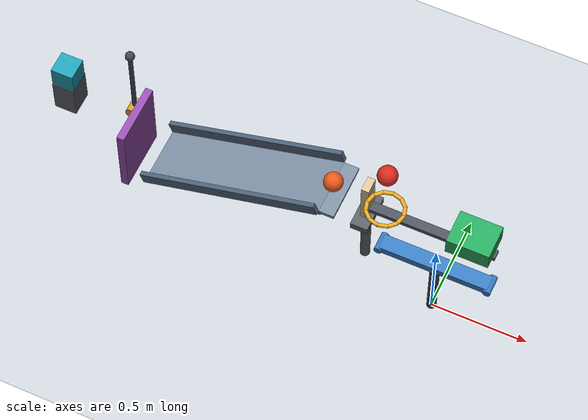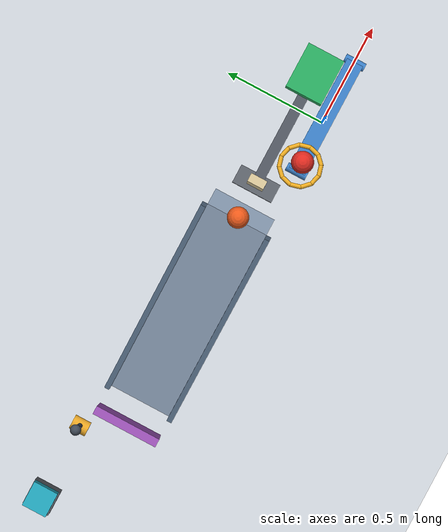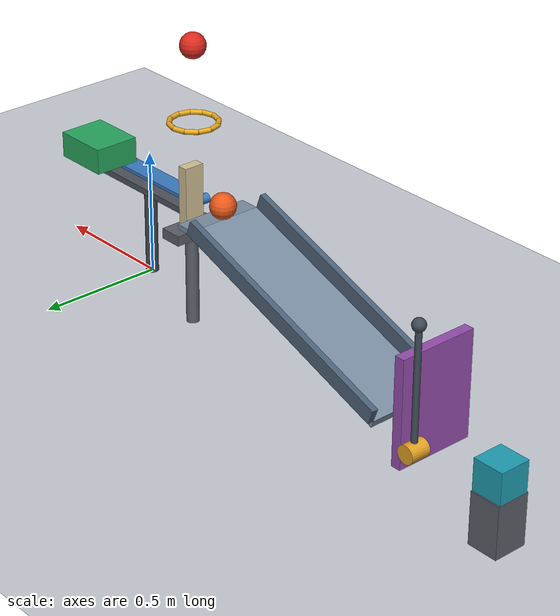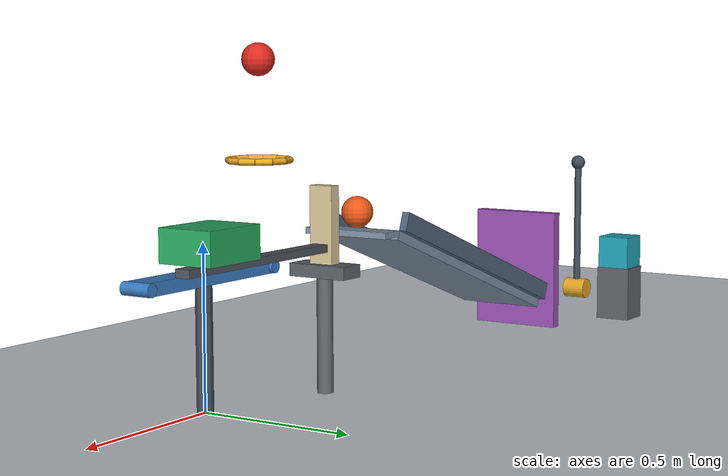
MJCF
<mujoco model="passive_chain_reaction_revised">
  <compiler angle="degree" autolimits="true"/>
  <option timestep="0.002" gravity="0 0 -9.81" integrator="implicitfast" solver="Newton" iterations="100" tolerance="1e-10"/>
  <statistic center="-0.85 0.15 0.50" extent="2.4"/>

  <visual>
    <headlight ambient="0.35 0.35 0.35" diffuse="0.65 0.65 0.65" specular="0.15 0.15 0.15"/>
    <rgba haze="0.85 0.90 0.95 1"/>
  </visual>

  <worldbody>
    <light name="scene_light" pos="-0.5 -2 4" dir="0 0.4 -1" diffuse="0.8 0.8 0.8"/>
    <geom name="floor" type="plane" pos="0 0 0" size="4 3 0.1" friction="0.72 0.005 0.005" condim="6" priority="1" solref="0.006 0.7156" solimp="0.95 0.95 0.001" rgba="0.78 0.80 0.83 1"/>

    <!-- Capsule centerlines give a 0.16 m clear inscribed diameter. -->
    <body name="ring1" pos="-0.27 0 0.72">
      <geom name="ring1_segment01" type="capsule" fromto="0.093175 0 0 0.080691 0.046588 0" size="0.01" friction="0.72 0.005 0.005" condim="3" solref="0.006 0.7156" solimp="0.95 0.95 0.001" rgba="0.9 0.65 0.12 1"/>
      <geom name="ring1_segment02" type="capsule" fromto="0.080691 0.046588 0 0.046588 0.080691 0" size="0.01" friction="0.72 0.005 0.005" condim="3" solref="0.006 0.7156" solimp="0.95 0.95 0.001" rgba="0.9 0.65 0.12 1"/>
      <geom name="ring1_segment03" type="capsule" fromto="0.046588 0.080691 0 0 0.093175 0" size="0.01" friction="0.72 0.005 0.005" condim="3" solref="0.006 0.7156" solimp="0.95 0.95 0.001" rgba="0.9 0.65 0.12 1"/>
      <geom name="ring1_segment04" type="capsule" fromto="0 0.093175 0 -0.046588 0.080691 0" size="0.01" friction="0.72 0.005 0.005" condim="3" solref="0.006 0.7156" solimp="0.95 0.95 0.001" rgba="0.9 0.65 0.12 1"/>
      <geom name="ring1_segment05" type="capsule" fromto="-0.046588 0.080691 0 -0.080691 0.046588 0" size="0.01" friction="0.72 0.005 0.005" condim="3" solref="0.006 0.7156" solimp="0.95 0.95 0.001" rgba="0.9 0.65 0.12 1"/>
      <geom name="ring1_segment06" type="capsule" fromto="-0.080691 0.046588 0 -0.093175 0 0" size="0.01" friction="0.72 0.005 0.005" condim="3" solref="0.006 0.7156" solimp="0.95 0.95 0.001" rgba="0.9 0.65 0.12 1"/>
      <geom name="ring1_segment07" type="capsule" fromto="-0.093175 0 0 -0.080691 -0.046588 0" size="0.01" friction="0.72 0.005 0.005" condim="3" solref="0.006 0.7156" solimp="0.95 0.95 0.001" rgba="0.9 0.65 0.12 1"/>
      <geom name="ring1_segment08" type="capsule" fromto="-0.080691 -0.046588 0 -0.046588 -0.080691 0" size="0.01" friction="0.72 0.005 0.005" condim="3" solref="0.006 0.7156" solimp="0.95 0.95 0.001" rgba="0.9 0.65 0.12 1"/>
      <geom name="ring1_segment09" type="capsule" fromto="-0.046588 -0.080691 0 0 -0.093175 0" size="0.01" friction="0.72 0.005 0.005" condim="3" solref="0.006 0.7156" solimp="0.95 0.95 0.001" rgba="0.9 0.65 0.12 1"/>
      <geom name="ring1_segment10" type="capsule" fromto="0 -0.093175 0 0.046588 -0.080691 0" size="0.01" friction="0.72 0.005 0.005" condim="3" solref="0.006 0.7156" solimp="0.95 0.95 0.001" rgba="0.9 0.65 0.12 1"/>
      <geom name="ring1_segment11" type="capsule" fromto="0.046588 -0.080691 0 0.080691 -0.046588 0" size="0.01" friction="0.72 0.005 0.005" condim="3" solref="0.006 0.7156" solimp="0.95 0.95 0.001" rgba="0.9 0.65 0.12 1"/>
      <geom name="ring1_segment12" type="capsule" fromto="0.080691 -0.046588 0 0.093175 0 0" size="0.01" friction="0.72 0.005 0.005" condim="3" solref="0.006 0.7156" solimp="0.95 0.95 0.001" rgba="0.9 0.65 0.12 1"/>
    </body>

    <!-- Initial ball center is 0.30 m above the ring plane.
         Initial lever-contact center height is 0.25 m below that plane. -->
    <body name="ball1" pos="-0.27 0 1.02">
      <freejoint name="ball1_free"/>
      <geom name="ball1_sphere" type="sphere" size="0.05" mass="0.20" friction="0.72 0.005 0.005" condim="3" solref="0.006 0.7156" solimp="0.95 0.95 0.001" rgba="0.85 0.16 0.12 1"/>
    </body>

    <body name="lever1_mount" pos="0 0 0.19">
      <geom name="lever1_mount_post" type="cylinder" size="0.025 0.19" contype="0" conaffinity="0" friction="0.72 0.005 0.005" rgba="0.25 0.28 0.32 1"/>
    </body>

    <!-- Overall lever envelope is 0.60 x 0.10 x 0.04 m; total mass is 0.50 kg. -->
    <body name="lever1" pos="0 0 0.40">
      <joint name="lever1_hinge" type="hinge" axis="0 -1 0" range="0 45" damping="0.04" margin="0" solreflimit="0.006 1" solimplimit="0.99 0.99 0.001"/>
      <geom name="lever1_beam" type="box" size="0.28 0.04 0.02" mass="0.46" friction="0.72 0.005 0.005" condim="3" solref="0.006 0.7156" solimp="0.95 0.95 0.001" rgba="0.22 0.48 0.75 1"/>
      <geom name="lever1_left_end" type="cylinder" pos="-0.28 0 0" euler="90 0 0" size="0.02 0.05" mass="0.02" friction="0.72 0.005 0.005" condim="3" solref="0.006 0.7156" solimp="0.95 0.95 0.001" rgba="0.22 0.48 0.75 1"/>
      <geom name="lever1_right_end" type="cylinder" pos="0.28 0 0" euler="90 0 0" size="0.02 0.05" mass="0.02" friction="0.72 0.005 0.005" condim="3" solref="0.006 0.7156" solimp="0.95 0.95 0.001" rgba="0.22 0.48 0.75 1"/>
    </body>

    <body name="cart1_guide" pos="-0.075 0.135 0.45">
      <geom name="cart1_guide_rail" type="box" size="0.33 0.025 0.012" contype="0" conaffinity="0" friction="0.72 0.005 0.005" rgba="0.30 0.32 0.36 1"/>
    </body>

    <!-- Surface contact with domino1 occurs after 0.42 m of travel. -->
    <body name="cart1" pos="0.135 0.135 0.52">
      <joint name="cart1_slide" type="slide" axis="-1 0 0" range="0 0.435" damping="0.20" margin="0" solreflimit="0.006 1" solimplimit="0.95 0.95 0.001"/>
      <geom name="cart1_box" type="box" size="0.11 0.09 0.05" mass="0.50" friction="0.72 0.005 0.005" condim="3" solref="0.006 0.7156" solimp="0.95 0.95 0.001" rgba="0.15 0.65 0.36 1"/>
    </body>

    <body name="domino1_support" pos="-0.415 0.135 0">
      <geom name="domino1_support_post" type="cylinder" pos="0 0 0.18" size="0.025 0.18" friction="0.72 0.005 0.005" condim="3" solref="0.006 0.7156" solimp="0.95 0.95 0.001" rgba="0.35 0.37 0.40 1"/>
      <geom name="domino1_support_top" type="box" pos="0 0 0.38" size="0.045 0.10 0.02" friction="0.72 0.005 0.005" condim="3" solref="0.006 0.7156" solimp="0.95 0.95 0.001" rgba="0.35 0.37 0.40 1"/>
    </body>

    <body name="domino1" pos="-0.415 0.135 0.52">
      <freejoint name="domino1_free"/>
      <geom name="domino1_box" type="box" size="0.02 0.04 0.12" mass="0.25" friction="0.72 0.005 0.005" condim="3" solref="0.006 0.7156" solimp="0.95 0.95 0.001" rgba="0.82 0.75 0.58 1"/>
    </body>

    <body name="ramp1" pos="0 0 0">
      <geom name="ramp1_deck" type="box" pos="-1.067716 0.135 0.3069147" euler="0 -20 0" size="0.50 0.15 0.015" friction="0.72 0.005 0.005" condim="3" solref="0.006 0.7156" solimp="0.95 0.95 0.001" rgba="0.48 0.55 0.63 1"/>
      <geom name="ramp1_high_landing" type="box" pos="-0.564 0.135 0.4820201" size="0.039 0.15 0.01" friction="0.72 0.005 0.005" condim="3" solref="0.006 0.7156" solimp="0.95 0.95 0.001" rgba="0.48 0.55 0.63 1"/>
      <geom name="ramp1_left_rail" type="box" pos="-1.0831069 -0.0275 0.3492009" euler="0 -20 0" size="0.50 0.0125 0.03" friction="0.72 0.005 0.005" condim="3" solref="0.006 0.7156" solimp="0.95 0.95 0.001" rgba="0.30 0.38 0.47 1"/>
      <geom name="ramp1_right_rail" type="box" pos="-1.0831069 0.2975 0.3492009" euler="0 -20 0" size="0.50 0.0125 0.03" friction="0.72 0.005 0.005" condim="3" solref="0.006 0.7156" solimp="0.95 0.95 0.001" rgba="0.30 0.38 0.47 1"/>
    </body>

    <!-- The domino-to-ball starting center spacing remains 0.18 m. -->
    <body name="ball2" pos="-0.595 0.135 0.5420201">
      <freejoint name="ball2_free"/>
      <geom name="ball2_sphere" type="sphere" size="0.05" mass="0.20" friction="0.72 0.005 0.005" condim="3" solref="0.006 0.7156" solimp="0.95 0.95 0.001" rgba="0.90 0.34 0.10 1"/>
    </body>

    <!-- Initial door front face is x=-1.6426926: 0.10 m beyond the ramp.
         The upright bottom-hinged panel is triggered by ball2 and falls toward its stop. -->
    <body name="door1" pos="-1.6626926 0.135 0.03">
      <joint name="door1_hinge" type="hinge" axis="0 -1 0" range="0 70" damping="0.04" margin="0" solreflimit="0.006 1" solimplimit="0.99 0.99 0.001"/>
      <geom name="door1_panel" type="box" pos="0 0 0.21" size="0.02 0.16 0.21" mass="0.45" friction="0.72 0.005 0.005" condim="3" solref="0.006 0.7156" solimp="0.95 0.95 0.001" rgba="0.58 0.30 0.68 1"/>
    </body>

    <body name="pendulum1" pos="-1.7726926 0.325 0.63">
      <joint name="pendulum1_hinge" type="hinge" axis="0 1 0" range="0 38" damping="0.04" margin="0" solreflimit="0.006 1" solimplimit="0.99 0.99 0.001"/>
      <geom name="pendulum1_hub" type="sphere" size="0.025" mass="0.23" friction="0.72 0.005 0.005" condim="3" solref="0.006 0.7156" solimp="0.95 0.95 0.001" rgba="0.24 0.28 0.33 1"/>
      <geom name="pendulum1_shaft" type="capsule" fromto="0 0 -0.012 0 0 -0.488" size="0.012" mass="0.10" friction="0.72 0.005 0.005" condim="3" solref="0.006 0.7156" solimp="0.95 0.95 0.001" rgba="0.24 0.28 0.33 1"/>
      <geom name="pendulum1_striker" type="cylinder" pos="0 0 -0.465" euler="90 0 0" size="0.035 0.04" mass="0.02" friction="0.72 0.005 0.005" condim="3" solref="0.006 0.7156" solimp="0.95 0.95 0.001" rgba="0.88 0.63 0.14 1"/>
    </body>

    <!-- Block contact begins near 37 degrees, allowing impact follow-through to 38 degrees. -->
    <body name="block1_support" pos="-2.1475366 0.325 0.10">
      <geom name="block1_support_box" type="box" size="0.06 0.065 0.10" friction="0.72 0.005 0.005" condim="3" solref="0.006 0.7156" solimp="0.95 0.95 0.001" rgba="0.35 0.37 0.40 1"/>
    </body>

    <body name="block1" pos="-2.1475366 0.325 0.26">
      <freejoint name="block1_free"/>
      <geom name="block1_cube" type="box" size="0.06 0.06 0.06" mass="0.35" friction="0.72 0.005 0.005" condim="3" solref="0.006 0.7156" solimp="0.95 0.95 0.001" rgba="0.12 0.62 0.70 1"/>
    </body>
  </worldbody>

  <!-- Initial model positions and zero velocities; no actuators or persistent controls. -->
  <keyframe>
    <key name="start" time="0"/>
  </keyframe>
</mujoco>
